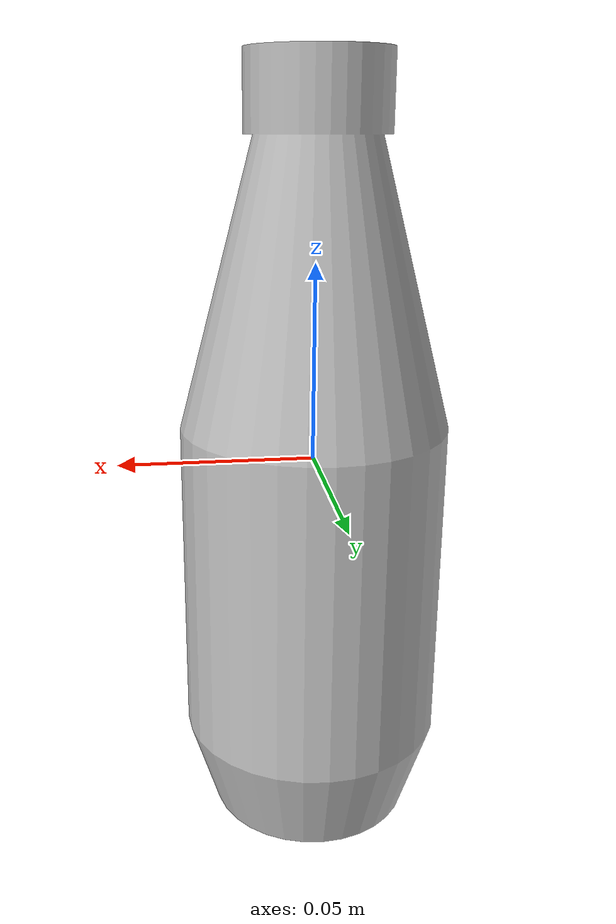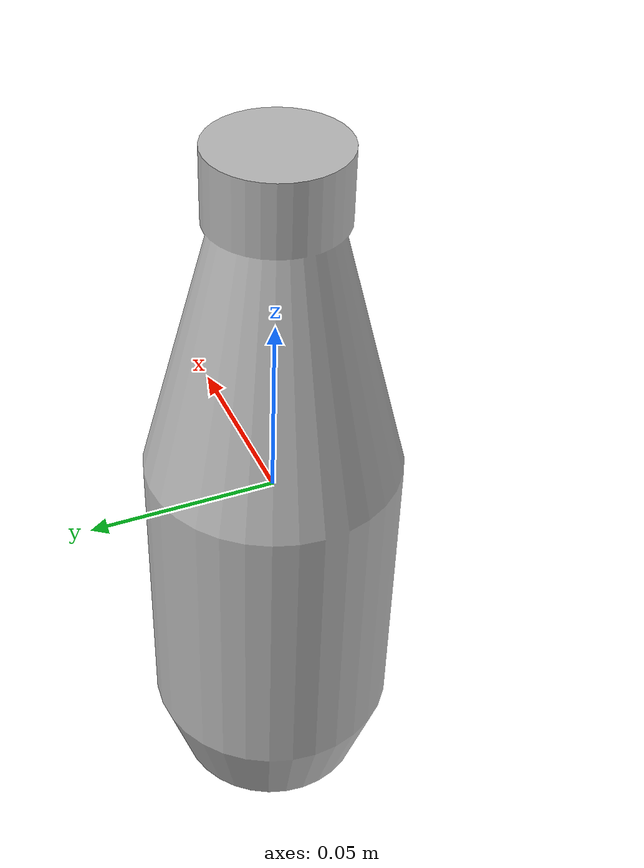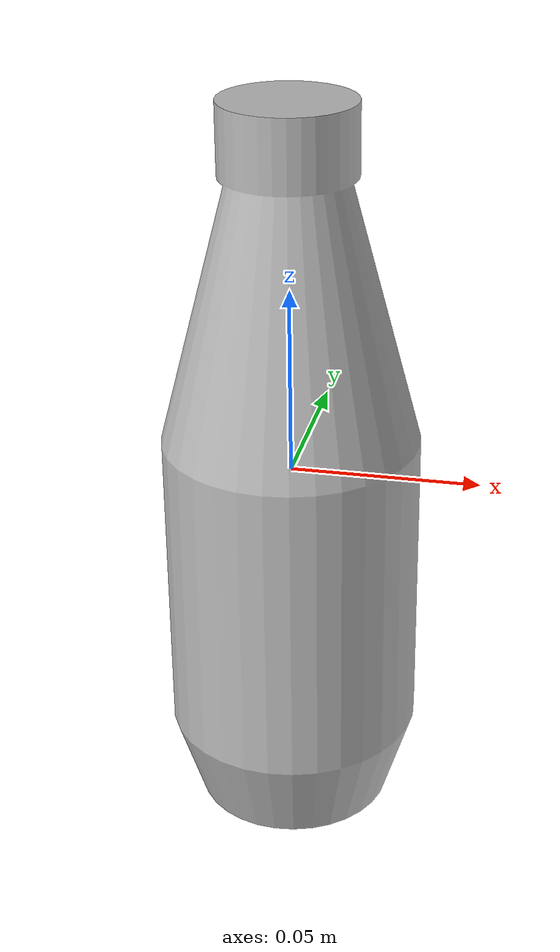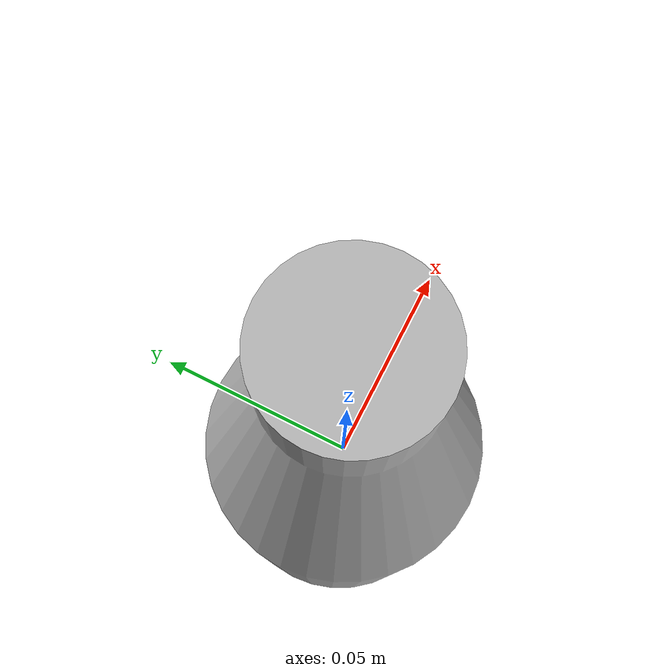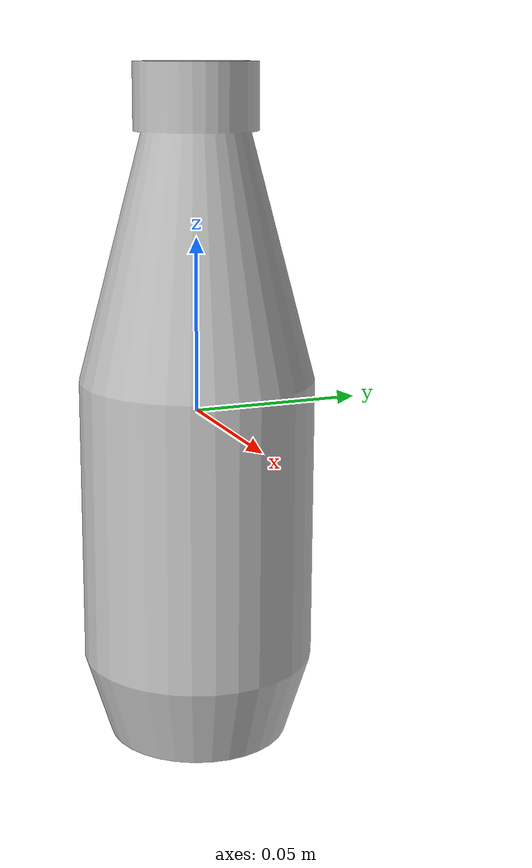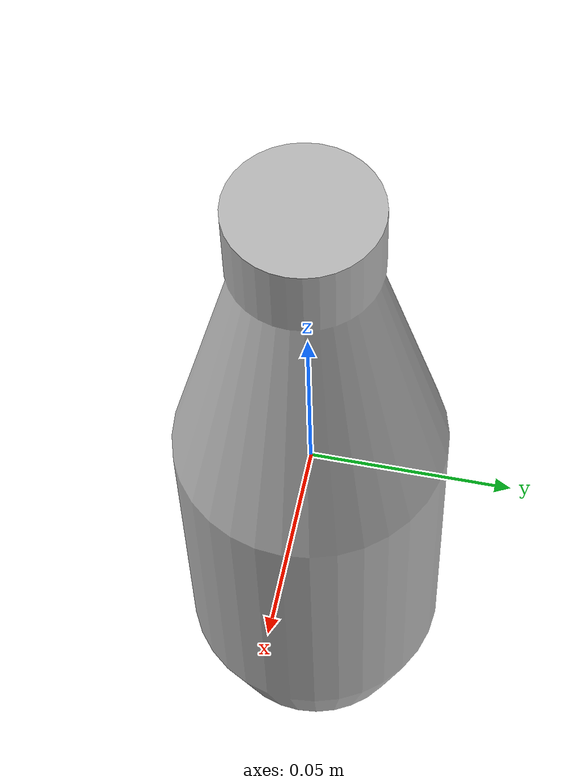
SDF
<?xml version="1.0" ?>
<sdf version='1.6'>
	<model name='Yellow Bottle'>
	<static>0</static>
	      <link name='link'>
	        <inertial>
	          <mass>0.3</mass>
	          <inertia>
	            <ixx>0.00055575</ixx>
	            <ixy>0</ixy>
	            <ixz>0</ixz>
	            <iyy>0.00055575</iyy>
	            <iyz>0</iyz>
	            <izz>0.0001755</izz>
	          </inertia>
	        </inertial>
	        <collision name='collision'>
	          <geometry>
	            <mesh>
	              <uri>model://yellowBottle/meshes/bottleYellowBlue.dae</uri>
			<scale>0.034 0.034 0.034</scale>
	            </mesh>
	          </geometry>
	          <surface>
	            <friction>
	              <ode>
	                <mu>3</mu>
	                <mu2>3</mu2>
	              </ode>
	              <torsional>
	                <ode/>
	              </torsional>
	            </friction>
	            <contact>
	              <ode>
	                <kp>1e+07</kp>
	                <kd>1</kd>
	                <min_depth>0.001</min_depth>
	                <max_vel>0.5</max_vel>
	              </ode>
	            </contact>
	            <bounce/>
	          </surface>
	          <max_contacts>10</max_contacts>
	        </collision>
	        <visual name='visual'>
	          <geometry>
	           	 <mesh>
	                <uri>model://yellowBottle/meshes/bottleYellowBlue.dae</uri>
			<scale>0.034 0.034 0.034</scale>
	            </mesh>
	          </geometry>
	        </visual>
	        <self_collide>0</self_collide>
	        <enable_wind>0</enable_wind>
	        <kinematic>0</kinematic>
	      </link>
	    </model>
</sdf>
